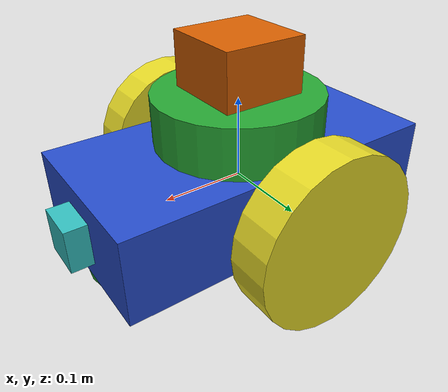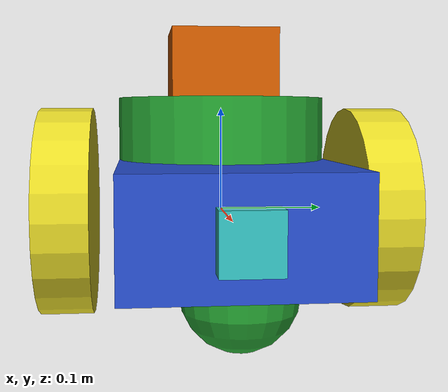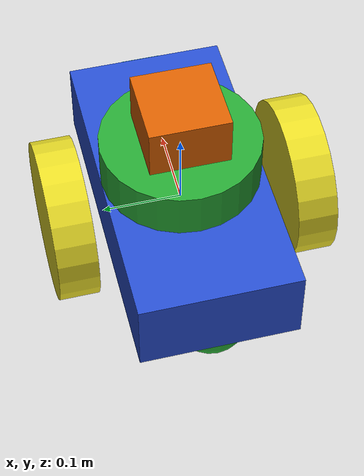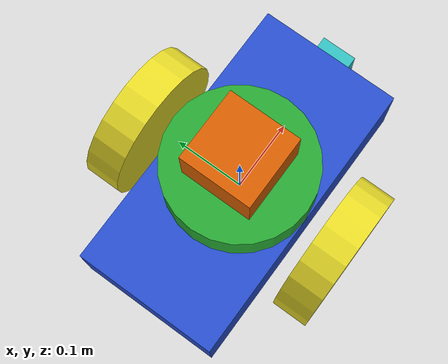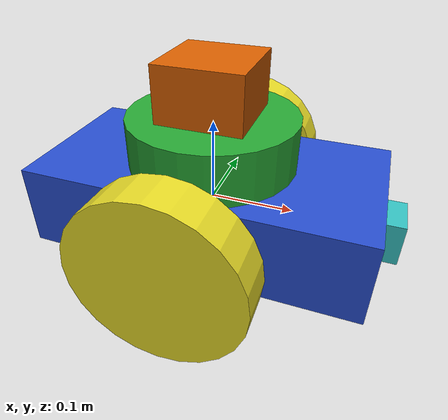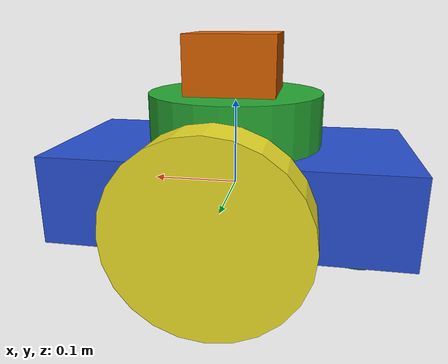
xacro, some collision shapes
<?xml version='1.0'?>

<robot name="GC_bot" xmlns:xacro="http://www.ros.org/wiki/xacro">

  <xacro:property name="chassissize"       value=".4 .2 .1" />
  <xacro:property name="chassispose"       value="0 0 0.1 0 0 0" />
  <xacro:property name="chassisorigin"     value="0.0 0.0 0.06" />

  <xacro:property name="wheelradius"       value="0.1" />
  <xacro:property name="wheellength"       value="0.05" />
  <xacro:property name="leftwheelorigin"   value="0.0  0.0 0.0" />
  <xacro:property name="rightwheelorigin"  value="0.0  0.0 0.0" />
  <xacro:property name="leftwheelhinge"    value="0 0.15 0" />
  <xacro:property name="rightwheelhinge"   value="0 -0.15 0" />

  <xacro:property name="casterradius"      value="0.05" />
  <xacro:property name="frontcasterorigin" value="-0.15 0 -0.05" />
  <xacro:property name="backcasterorigin"  value=" 0.15 0 -0.05" />

  <xacro:property name="camerasize"        value="0.05 0.05 0.05" />

  <xacro:property name="towerradius"       value="0.1" />
  <xacro:property name="towerlength"       value="0.1" />
  <xacro:property name="towerorigin"       value="0.0 0.0 0.06" />

  <xacro:include filename="$(find udacity_bot)/urdf/GC_bot.gazebo" />

  <link name="robot_footprint"></link>

  <joint name="robot_footprint_joint" type="fixed">
    <origin xyz="0 0 0" rpy="0 0 0" />
    <parent link="robot_footprint"/>
    <child link="chassis" />
  </joint>

  <link name='chassis'>
    <pose>${chassispose}</pose>

    <inertial>
      <mass value="15.0"/>
      <origin xyz="0.0 0 0" rpy=" 0 0 0"/>
      <inertia
          ixx="0.1" ixy="0" ixz="0"
          iyy="0.1" iyz="0"
          izz="0.1"
      />
    </inertial>

    <collision name='collision'>
      <origin xyz="0 0 0" rpy=" 0 0 0"/>
      <geometry>
        <box size="${chassissize}"/>
      </geometry>
    </collision>

    <visual name='chassis_visual'>
      <origin xyz="0 0 0" rpy=" 0 0 0"/>
      <geometry>
        <box size="${chassissize}"/>
      </geometry>
      <material name="blue"/>
   </visual>

    <collision name='towercollision'>
      <origin xyz="${towerorigin}" rpy=" 0 0 0"/>
      <geometry>
          <cylinder radius="${towerradius}" length="${towerlength}"/>
      </geometry>
    </collision>

    <visual name='tower_visual'>
      <origin xyz="${towerorigin}" rpy=" 0 0 0"/>
      <geometry>
          <cylinder radius="${towerradius}" length="${towerlength}"/>
      </geometry>
      <material name="green"/>
   </visual>

    <collision name='back_caster_collision'>
      <origin xyz="${backcasterorigin}" rpy=" 0 0 0"/>
      <geometry>
        <sphere radius="${casterradius}"/>
      </geometry>
      <surface>
        <friction>
          <ode>
            <mu>0</mu>
            <mu2>0</mu2>
            <slip1>1.0</slip1>
            <slip2>1.0</slip2>
          </ode>
        </friction>
      </surface>
    </collision>

    <visual name='back_caster_visual'>
      <origin xyz="${backcasterorigin}" rpy=" 0 0 0"/>
      <geometry>
        <sphere radius="0.05"/>
      </geometry>
    </visual>

    <collision name='front_caster_collision'>
      <origin xyz="${frontcasterorigin}" rpy=" 0 0 0"/>
      <geometry>
        <sphere radius="${casterradius}"/>
      </geometry>
      <surface>
        <friction>
          <ode>
            <mu>0</mu>
            <mu2>0</mu2>
            <slip1>1.0</slip1>
            <slip2>1.0</slip2>
          </ode>
        </friction>
      </surface>
    </collision>

    <visual name='front_caster_visual'>
      <origin xyz="${frontcasterorigin}" rpy=" 0 0 0"/>
      <geometry>
        <sphere radius="${casterradius}"/>
      </geometry>
    </visual>

  </link>

  <link name="left_wheel">
    <collision name='left_wheel_collision'>
      <origin xyz="${leftwheelorigin}" rpy=" 0.0 1.5707 1.5707"/>
      <geometry>
        <cylinder radius="${wheelradius}" length="${wheellength}"/>
      </geometry>
      <surface>
        <friction>
          <ode>
            <mu>0</mu>
            <mu2>0</mu2>
            <slip1>1.0</slip1>
            <slip2>1.0</slip2>
          </ode>
        </friction>
      </surface>
    </collision>
    <inertial>
      <mass value="5.0"/>
      <origin xyz="${leftwheelorigin}" rpy=" 0 0 0"/>
      <inertia
          ixx="0.1" ixy="0" ixz="0"
          iyy="0.1" iyz="0"
          izz="0.1"
      />
    </inertial>
    <visual name='left_wheel_visual'>
     <origin xyz="${leftwheelorigin}" rpy=" 0.0 1.5707 1.5707"/>
      <geometry>
        <cylinder radius="${wheelradius}" length="${wheellength}"/>
      </geometry>
      <material name="yellow"/>
    </visual>
  </link>

  <joint type="continuous" name="left_wheel_hinge">
    <origin xyz="${leftwheelhinge}" rpy="0 0 0"/>
    <child link="left_wheel"/>
    <parent link="chassis"/>
    <axis xyz="0 1 0" rpy="0 0 0"/>
    <limit effort="10000" velocity="1000"/>
    <joint_properties damping="1.0" friction="1.0"/>
  </joint>

  <link name="right_wheel">
    <collision name='right_wheel_collision'>
      <origin xyz="${rightwheelorigin}" rpy=" 0.0 1.5707 1.5707"/>
      <geometry>
        <cylinder radius="${wheelradius}" length="${wheellength}"/>
      </geometry>
      <surface>
        <friction>
          <ode>
            <mu>0</mu>
            <mu2>0</mu2>
            <slip1>1.0</slip1>
            <slip2>1.0</slip2>
          </ode>
        </friction>
      </surface>
    </collision>
    <inertial>
      <mass value="5.0"/>
      <origin xyz="0.0 0.0 0.0" rpy=" 0.0 0.0 0.0"/>
      <inertia
          ixx="0.1" ixy="0" ixz="0"
          iyy="0.1" iyz="0"
          izz="0.1"
      />
    </inertial>
    <visual name='right_wheel_visual'>
      <origin xyz="${rightwheelorigin}" rpy=" 0.0 1.5707 1.5707"/>
      <geometry>
        <cylinder radius="${wheelradius}" length="${wheellength}"/>
      </geometry>
       <material name="yellow"/>
   </visual>
  </link>
  <joint type="continuous" name="right_wheel_hinge">
    <origin xyz="${rightwheelhinge}" rpy="0 0 0"/>
    <child link="right_wheel"/>
    <parent link="chassis"/>
    <axis xyz="0 1 0" rpy="0 0 0"/>
    <limit effort="10000" velocity="1000"/>
    <joint_properties damping="1.0" friction="1.0"/>
  </joint>

  <link name="camera">
    <collision name='camera_collision'>
      <origin xyz="0.0 0.0 0.0" rpy=" 0.0 0.0 0.0"/>
      <geometry>
        <box size="${camerasize}"/>
      </geometry>
      <surface>
        <friction>
          <ode>
            <mu>0</mu>
            <mu2>0</mu2>
            <slip1>1.0</slip1>
            <slip2>1.0</slip2>
          </ode>
        </friction>
      </surface>
    </collision>
    <inertial>
      <mass value="0.1"/>
      <origin xyz="0.0 0.0 0.0" rpy=" 0.0 0.0 0.0"/>
      <inertia
          ixx="1e-6" ixy="0" ixz="0"
          iyy="1e-6" iyz="0"
          izz="1e-6"
      />
    </inertial>
    <visual name='camera_visual'>
      <origin xyz="0.0 0.0 0.0" rpy=" 0.0 0.0 0.0"/>
      <geometry>
        <box size="${camerasize}"/>
      </geometry>
      <material name="turquoise"/>
    </visual>
  </link>

  <joint type="continuous" name="camera_joint">
    <origin xyz="0.2 0.0 0.0" rpy="0 0 0"/>
    <child link="camera"/>
    <parent link="chassis"/>
    <axis xyz="0 1 0" rpy="0 0 0"/>
    <limit effort="10000" velocity="1000"/>
    <joint_properties damping="1.0" friction="1.0"/>
  </joint>

  <link name="hokuyo">
    <collision name='hokuyo_collision'>
      <origin xyz="0.0 0.0 0.0" rpy=" 0.0 0.0 0.0"/>
      <geometry>
        <box size="0.1 0.1 0.1"/>
      </geometry>
      <surface>
        <friction>
          <ode>
            <mu>0</mu>
            <mu2>0</mu2>
            <slip1>1.0</slip1>
            <slip2>1.0</slip2>
          </ode>
        </friction>
      </surface>
    </collision>
    <inertial>
      <mass value="0.1"/>
      <origin xyz="0.0 0.0 0.0" rpy=" 0.0 0.0 0.0"/>
      <inertia
          ixx="1e-6" ixy="0" ixz="0"
          iyy="1e-6" iyz="0"
          izz="1e-6"
      />
    </inertial>
    <visual name='hokuyo_visual'>
      <origin xyz="0.0 0.0 0.0" rpy=" 0.0 0.0 0.0"/>
      <geometry>
        <mesh filename="package://udacity_bot/meshes/hokuyo.dae"/>
      </geometry>
   </visual>
  </link>

  <joint type="continuous" name="hokuyo_joint">
    <origin xyz="0.0 0.0 0.125" rpy="0 0 0"/>
    <child link="hokuyo"/>
    <parent link="chassis"/>
    <axis xyz="0 1 0" rpy="0 0 0"/>
    <limit effort="10000" velocity="1000"/>
    <joint_properties damping="1.0" friction="1.0"/>
  </joint>

  <xacro:macro name="default_inertial" params="mass">
    <inertial>
      <mass value="${mass}" />
      <inertia ixx="1.0" ixy="0.0" ixz="0.0" iyy="1.0" iyz="0.0" izz="1.0" />
    </inertial>
  </xacro:macro>

</robot>
